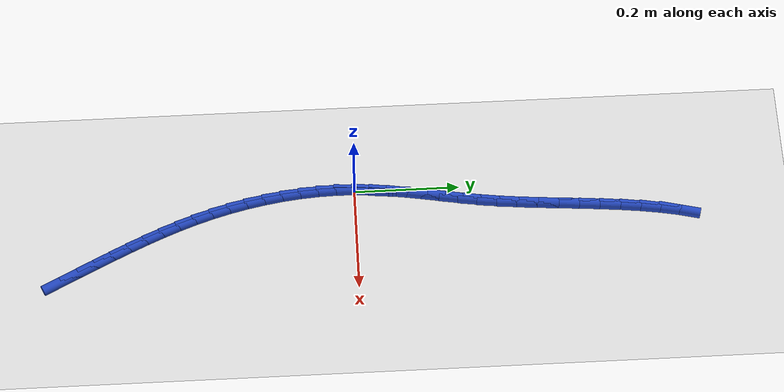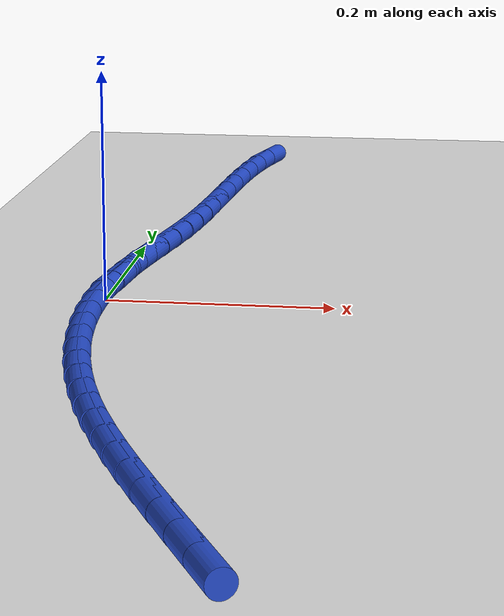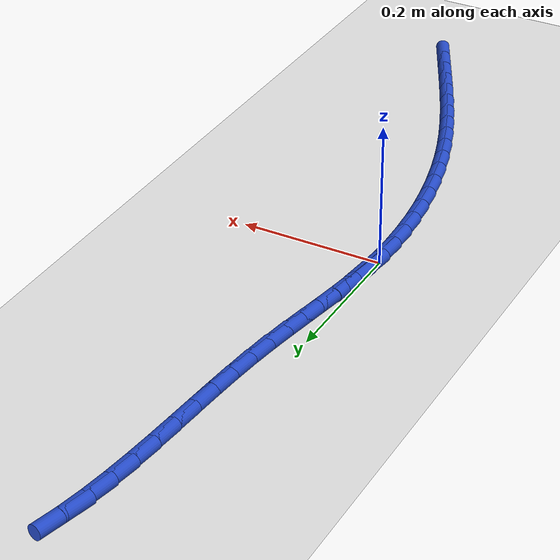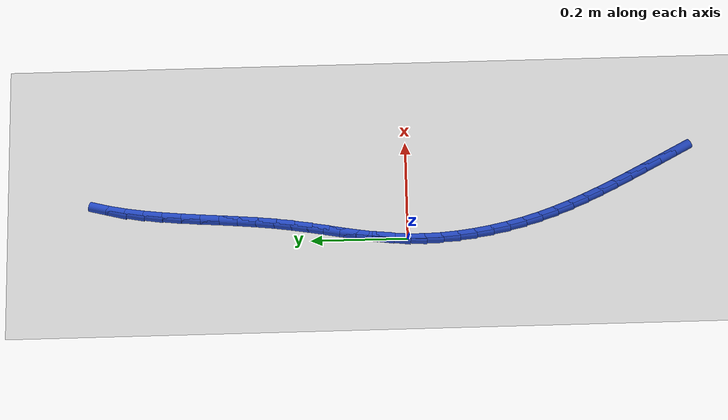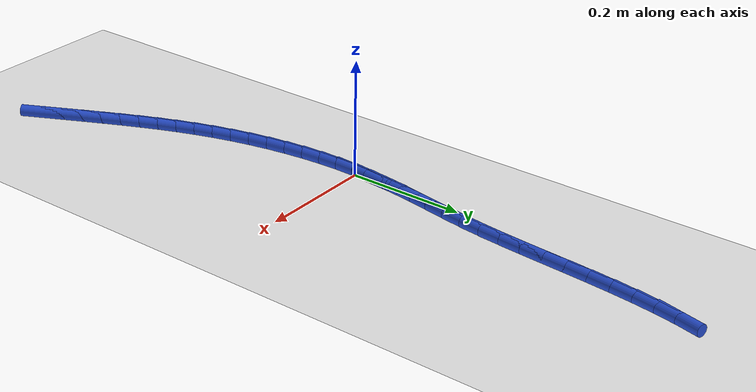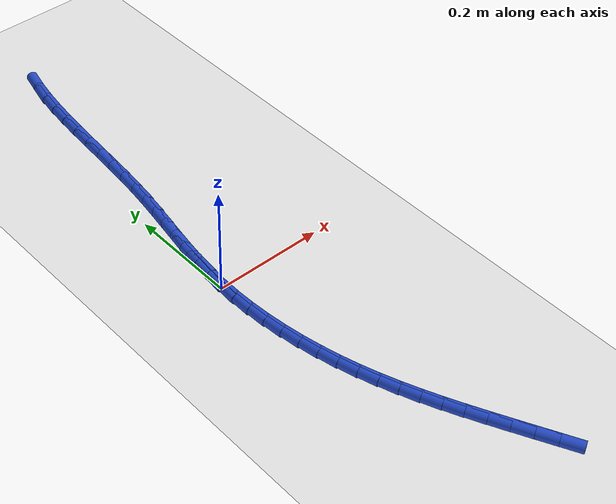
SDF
<sdf version="1.6">
 <world name="default">
  <model name="ground_plane">
   <static>1</static>
   <link name="link">
    <collision name="collision">
     <geometry><plane><normal>0 0 1</normal><size>100 100</size></plane></geometry>
     <surface><friction><ode><mu>100</mu><mu2>50</mu2></ode></friction></surface>
    </collision>
    <visual name="visual">
     <cast_shadows>0</cast_shadows>
     <geometry><plane><normal>0 0 1</normal><size>100 100</size></plane></geometry>
     <material>
      <script><uri>file://media/materials/scripts/gazebo.material</uri><name>Gazebo/WhiteGlow</name></script>
     </material>
    </visual>
   </link>
  </model>
  <model name="line">
   <link name="link_0">
    <pose>-1.734723475976807e-17 -6.245004513516506e-17 0.01 0 1.57 1.5053181064349537</pose>
    <collision name="collision">
     <geometry><cylinder><radius>0.01</radius><length>0.08</length></cylinder></geometry>
    </collision>
    <visual name="visual">
     <material>
      <script><name>Gazebo/Blue</name><uri>file://media/materials/scripts/gazebo.material</uri></script>
     </material>
     <geometry><cylinder><radius>0.01</radius><length>0.08</length></cylinder></geometry>
    </visual>
   </link>
   <link name="link_1">
    <pose>0.0021909447616134535 0.03341283107584024 0.01 0 1.57 1.4635662147080735</pose>
    <collision name="collision">
     <geometry><cylinder><radius>0.01</radius><length>0.08</length></cylinder></geometry>
    </collision>
    <visual name="visual">
     <material>
      <script><name>Gazebo/Blue</name><uri>file://media/materials/scripts/gazebo.material</uri></script>
     </material>
     <geometry><cylinder><radius>0.01</radius><length>0.08</length></cylinder></geometry>
    </visual>
   </link>
   <link name="link_2">
    <pose>0.005755805332917543 0.06653027114891552 0.01 0 1.57 1.4323433520758704</pose>
    <collision name="collision">
     <geometry><cylinder><radius>0.01</radius><length>0.08</length></cylinder></geometry>
    </collision>
    <visual name="visual">
     <material>
      <script><name>Gazebo/Blue</name><uri>file://media/materials/scripts/gazebo.material</uri></script>
     </material>
     <geometry><cylinder><radius>0.01</radius><length>0.08</length></cylinder></geometry>
    </visual>
   </link>
   <link name="link_3">
    <pose>0.01036091575959313 0.09957865667562317 0.01 0 1.57 1.4121766671037692</pose>
    <collision name="collision">
     <geometry><cylinder><radius>0.01</radius><length>0.08</length></cylinder></geometry>
    </collision>
    <visual name="visual">
     <material>
      <script><name>Gazebo/Blue</name><uri>file://media/materials/scripts/gazebo.material</uri></script>
     </material>
     <geometry><cylinder><radius>0.01</radius><length>0.08</length></cylinder></geometry>
    </visual>
   </link>
   <link name="link_4">
    <pose>0.015672610087321067 0.13278432411236057 0.01 0 1.57 1.4031460281855865</pose>
    <collision name="collision">
     <geometry><cylinder><radius>0.01</radius><length>0.08</length></cylinder></geometry>
    </collision>
    <visual name="visual">
     <material>
      <script><name>Gazebo/Blue</name><uri>file://media/materials/scripts/gazebo.material</uri></script>
     </material>
     <geometry><cylinder><radius>0.01</radius><length>0.08</length></cylinder></geometry>
    </visual>
   </link>
   <link name="link_5">
    <pose>0.021357222361782245 0.16637360991552522 0.01 0 1.57 1.404965184819467</pose>
    <collision name="collision">
     <geometry><cylinder><radius>0.01</radius><length>0.08</length></cylinder></geometry>
    </collision>
    <visual name="visual">
     <material>
      <script><name>Gazebo/Blue</name><uri>file://media/materials/scripts/gazebo.material</uri></script>
     </material>
     <geometry><cylinder><radius>0.01</radius><length>0.08</length></cylinder></geometry>
    </visual>
   </link>
   <link name="link_6">
    <pose>0.02708108662865752 0.2005728505415144 0.01 0 1.57 1.4170494922797532</pose>
    <collision name="collision">
     <geometry><cylinder><radius>0.01</radius><length>0.08</length></cylinder></geometry>
    </collision>
    <visual name="visual">
     <material>
      <script><name>Gazebo/Blue</name><uri>file://media/materials/scripts/gazebo.material</uri></script>
     </material>
     <geometry><cylinder><radius>0.01</radius><length>0.08</length></cylinder></geometry>
    </visual>
   </link>
   <link name="link_7">
    <pose>0.03251053693362776 0.23560838244672558 0.01 0 1.57 1.438563299679691</pose>
    <collision name="collision">
     <geometry><cylinder><radius>0.01</radius><length>0.08</length></cylinder></geometry>
    </collision>
    <visual name="visual">
     <material>
      <script><name>Gazebo/Blue</name><uri>file://media/materials/scripts/gazebo.material</uri></script>
     </material>
     <geometry><cylinder><radius>0.01</radius><length>0.08</length></cylinder></geometry>
    </visual>
   </link>
   <link name="link_8">
    <pose>0.03731192184006514 0.2717065293652066 0.01 0 1.57 1.4649946939506238</pose>
    <collision name="collision">
     <geometry><cylinder><radius>0.01</radius><length>0.08</length></cylinder></geometry>
    </collision>
    <visual name="visual">
     <material>
      <script><name>Gazebo/Blue</name><uri>file://media/materials/scripts/gazebo.material</uri></script>
     </material>
     <geometry><cylinder><radius>0.01</radius><length>0.08</length></cylinder></geometry>
    </visual>
   </link>
   <link name="link_9">
    <pose>0.041271228462894084 0.30898877167495264 0.01 0 1.57 1.4843571136594005</pose>
    <collision name="collision">
     <geometry><cylinder><radius>0.01</radius><length>0.08</length></cylinder></geometry>
    </collision>
    <visual name="visual">
     <material>
      <script><name>Gazebo/Blue</name><uri>file://media/materials/scripts/gazebo.material</uri></script>
     </material>
     <geometry><cylinder><radius>0.01</radius><length>0.08</length></cylinder></geometry>
    </visual>
   </link>
   <link name="link_10">
    <pose>0.044583962917615336 0.347217714242423 0.01 0 1.57 1.4950510731282154</pose>
    <collision name="collision">
     <geometry><cylinder><radius>0.01</radius><length>0.08</length></cylinder></geometry>
    </collision>
    <visual name="visual">
     <material>
      <script><name>Gazebo/Blue</name><uri>file://media/materials/scripts/gazebo.material</uri></script>
     </material>
     <geometry><cylinder><radius>0.01</radius><length>0.08</length></cylinder></geometry>
    </visual>
   </link>
   <link name="link_11">
    <pose>0.04753318134204573 0.3860792388540751 0.01 0 1.57 1.4977067613809483</pose>
    <collision name="collision">
     <geometry><cylinder><radius>0.01</radius><length>0.08</length></cylinder></geometry>
    </collision>
    <visual name="visual">
     <material>
      <script><name>Gazebo/Blue</name><uri>file://media/materials/scripts/gazebo.material</uri></script>
     </material>
     <geometry><cylinder><radius>0.01</radius><length>0.08</length></cylinder></geometry>
    </visual>
   </link>
   <link name="link_12">
    <pose>0.05040193987400204 0.4252592272963661 0.01 0 1.57 1.4925740464998956</pose>
    <collision name="collision">
     <geometry><cylinder><radius>0.01</radius><length>0.08</length></cylinder></geometry>
    </collision>
    <visual name="visual">
     <material>
      <script><name>Gazebo/Blue</name><uri>file://media/materials/scripts/gazebo.material</uri></script>
     </material>
     <geometry><cylinder><radius>0.01</radius><length>0.08</length></cylinder></geometry>
    </visual>
   </link>
   <link name="link_13">
    <pose>0.05347329465130108 0.4644435613557532 0.01 0 1.57 1.479550793407288</pose>
    <collision name="collision">
     <geometry><cylinder><radius>0.01</radius><length>0.08</length></cylinder></geometry>
    </collision>
    <visual name="visual">
     <material>
      <script><name>Gazebo/Blue</name><uri>file://media/materials/scripts/gazebo.material</uri></script>
     </material>
     <geometry><cylinder><radius>0.01</radius><length>0.08</length></cylinder></geometry>
    </visual>
   </link>
   <link name="link_14">
    <pose>0.05703030181175968 0.5033181228186937 0.01 0 1.57 1.4581861358759884</pose>
    <collision name="collision">
     <geometry><cylinder><radius>0.01</radius><length>0.08</length></cylinder></geometry>
    </collision>
    <visual name="visual">
     <material>
      <script><name>Gazebo/Blue</name><uri>file://media/materials/scripts/gazebo.material</uri></script>
     </material>
     <geometry><cylinder><radius>0.01</radius><length>0.08</length></cylinder></geometry>
    </visual>
   </link>
   <link name="link_15">
    <pose>0.061356017493194616 0.5415687934716449 0.01 0 1.57 1.4276624286103734</pose>
    <collision name="collision">
     <geometry><cylinder><radius>0.01</radius><length>0.08</length></cylinder></geometry>
    </collision>
    <visual name="visual">
     <material>
      <script><name>Gazebo/Blue</name><uri>file://media/materials/scripts/gazebo.material</uri></script>
     </material>
     <geometry><cylinder><radius>0.01</radius><length>0.08</length></cylinder></geometry>
    </visual>
   </link>
   <link name="link_16">
    <pose>0.06673349783342274 0.5788814551010637 0.01 0 1.57 1.3867626916005327</pose>
    <collision name="collision">
     <geometry><cylinder><radius>0.01</radius><length>0.08</length></cylinder></geometry>
    </collision>
    <visual name="visual">
     <material>
      <script><name>Gazebo/Blue</name><uri>file://media/materials/scripts/gazebo.material</uri></script>
     </material>
     <geometry><cylinder><radius>0.01</radius><length>0.08</length></cylinder></geometry>
    </visual>
   </link>
   <link name="link_17">
    <pose>0.07344579897026081 0.6149419894934077 0.01 0 1.57 1.333838802848029</pose>
    <collision name="collision">
     <geometry><cylinder><radius>0.01</radius><length>0.08</length></cylinder></geometry>
    </collision>
    <visual name="visual">
     <material>
      <script><name>Gazebo/Blue</name><uri>file://media/materials/scripts/gazebo.material</uri></script>
     </material>
     <geometry><cylinder><radius>0.01</radius><length>0.08</length></cylinder></geometry>
    </visual>
   </link>
   <link name="link_213">
    <pose>0.16391883589533504 -0.5559371863479032 0.01 0 1.57 -1.1034819798652173</pose>
    <collision name="collision">
     <geometry><cylinder><radius>0.01</radius><length>0.08</length></cylinder></geometry>
    </collision>
    <visual name="visual">
     <material>
      <script><name>Gazebo/Blue</name><uri>file://media/materials/scripts/gazebo.material</uri></script>
     </material>
     <geometry><cylinder><radius>0.01</radius><length>0.08</length></cylinder></geometry>
    </visual>
   </link>
   <link name="link_214">
    <pose>0.14728656992716113 -0.522975366637749 0.01 0 1.57 -1.105653209513228</pose>
    <collision name="collision">
     <geometry><cylinder><radius>0.01</radius><length>0.08</length></cylinder></geometry>
    </collision>
    <visual name="visual">
     <material>
      <script><name>Gazebo/Blue</name><uri>file://media/materials/scripts/gazebo.material</uri></script>
     </material>
     <geometry><cylinder><radius>0.01</radius><length>0.08</length></cylinder></geometry>
    </visual>
   </link>
   <link name="link_215">
    <pose>0.1311162349291543 -0.4907552505024852 0.01 0 1.57 -1.1108446218431314</pose>
    <collision name="collision">
     <geometry><cylinder><radius>0.01</radius><length>0.08</length></cylinder></geometry>
    </collision>
    <visual name="visual">
     <material>
      <script><name>Gazebo/Blue</name><uri>file://media/materials/scripts/gazebo.material</uri></script>
     </material>
     <geometry><cylinder><radius>0.01</radius><length>0.08</length></cylinder></geometry>
    </visual>
   </link>
   <link name="link_216">
    <pose>0.11546845797663861 -0.45916837849249886 0.01 0 1.57 -1.1212140059491762</pose>
    <collision name="collision">
     <geometry><cylinder><radius>0.01</radius><length>0.08</length></cylinder></geometry>
    </collision>
    <visual name="visual">
     <material>
      <script><name>Gazebo/Blue</name><uri>file://media/materials/scripts/gazebo.material</uri></script>
     </material>
     <geometry><cylinder><radius>0.01</radius><length>0.08</length></cylinder></geometry>
    </visual>
   </link>
   <link name="link_217">
    <pose>0.10043339099669908 -0.4280102027930254 0.01 0 1.57 -1.1369264734748372</pose>
    <collision name="collision">
     <geometry><cylinder><radius>0.01</radius><length>0.08</length></cylinder></geometry>
    </collision>
    <visual name="visual">
     <material>
      <script><name>Gazebo/Blue</name><uri>file://media/materials/scripts/gazebo.material</uri></script>
     </material>
     <geometry><cylinder><radius>0.01</radius><length>0.08</length></cylinder></geometry>
    </visual>
   </link>
   <link name="link_218">
    <pose>0.0861012107824623 -0.39707609466299315 0.01 0 1.57 -1.158007232099378</pose>
    <collision name="collision">
     <geometry><cylinder><radius>0.01</radius><length>0.08</length></cylinder></geometry>
    </collision>
    <visual name="visual">
     <material>
      <script><name>Gazebo/Blue</name><uri>file://media/materials/scripts/gazebo.material</uri></script>
     </material>
     <geometry><cylinder><radius>0.01</radius><length>0.08</length></cylinder></geometry>
    </visual>
   </link>
   <link name="link_219">
    <pose>0.0725620941270546 -0.3661614253613298 0.01 0 1.57 -1.184318797672108</pose>
    <collision name="collision">
     <geometry><cylinder><radius>0.01</radius><length>0.08</length></cylinder></geometry>
    </collision>
    <visual name="visual">
     <material>
      <script><name>Gazebo/Blue</name><uri>file://media/materials/scripts/gazebo.material</uri></script>
     </material>
     <geometry><cylinder><radius>0.01</radius><length>0.08</length></cylinder></geometry>
    </visual>
   </link>
   <link name="link_220">
    <pose>0.059906217823603294 -0.33506156614696525 0.01 0 1.57 -1.2155430083858105</pose>
    <collision name="collision">
     <geometry><cylinder><radius>0.01</radius><length>0.08</length></cylinder></geometry>
    </collision>
    <visual name="visual">
     <material>
      <script><name>Gazebo/Blue</name><uri>file://media/materials/scripts/gazebo.material</uri></script>
     </material>
     <geometry><cylinder><radius>0.01</radius><length>0.08</length></cylinder></geometry>
    </visual>
   </link>
   <link name="link_221">
    <pose>0.048223758665234644 -0.30357188827882714 0.01 0 1.57 -1.25117477601593</pose>
    <collision name="collision">
     <geometry><cylinder><radius>0.01</radius><length>0.08</length></cylinder></geometry>
    </collision>
    <visual name="visual">
     <material>
      <script><name>Gazebo/Blue</name><uri>file://media/materials/scripts/gazebo.material</uri></script>
     </material>
     <geometry><cylinder><radius>0.01</radius><length>0.08</length></cylinder></geometry>
    </visual>
   </link>
   <link name="link_222">
    <pose>0.03760489344507527 -0.2714877630158439 0.01 0 1.57 -1.2900207794302525</pose>
    <collision name="collision">
     <geometry><cylinder><radius>0.01</radius><length>0.08</length></cylinder></geometry>
    </collision>
    <visual name="visual">
     <material>
      <script><name>Gazebo/Blue</name><uri>file://media/materials/scripts/gazebo.material</uri></script>
     </material>
     <geometry><cylinder><radius>0.01</radius><length>0.08</length></cylinder></geometry>
    </visual>
   </link>
   <link name="link_223">
    <pose>0.028136805342616002 -0.2386573923793218 0.01 0 1.57 -1.3293681587737154</pose>
    <collision name="collision">
     <geometry><cylinder><radius>0.01</radius><length>0.08</length></cylinder></geometry>
    </collision>
    <visual name="visual">
     <material>
      <script><name>Gazebo/Blue</name><uri>file://media/materials/scripts/gazebo.material</uri></script>
     </material>
     <geometry><cylinder><radius>0.01</radius><length>0.08</length></cylinder></geometry>
    </visual>
   </link>
   <link name="link_224">
    <pose>0.019892674780619044 -0.20517609655726754 0.01 0 1.57 -1.3689278107238823</pose>
    <collision name="collision">
     <geometry><cylinder><radius>0.01</radius><length>0.08</length></cylinder></geometry>
    </collision>
    <visual name="visual">
     <material>
      <script><name>Gazebo/Blue</name><uri>file://media/materials/scripts/gazebo.material</uri></script>
     </material>
     <geometry><cylinder><radius>0.01</radius><length>0.08</length></cylinder></geometry>
    </visual>
   </link>
   <link name="link_225">
    <pose>0.012941591359367519 -0.1712113898470778 0.01 0 1.57 -1.409182933518053</pose>
    <collision name="collision">
     <geometry><cylinder><radius>0.01</radius><length>0.08</length></cylinder></geometry>
    </collision>
    <visual name="visual">
     <material>
      <script><name>Gazebo/Blue</name><uri>file://media/materials/scripts/gazebo.material</uri></script>
     </material>
     <geometry><cylinder><radius>0.01</radius><length>0.08</length></cylinder></geometry>
    </visual>
   </link>
   <link name="link_226">
    <pose>0.00735264418273883 -0.13693079530663554 0.01 0 1.57 -1.450615946603189</pose>
    <collision name="collision">
     <geometry><cylinder><radius>0.01</radius><length>0.08</length></cylinder></geometry>
    </collision>
    <visual name="visual">
     <material>
      <script><name>Gazebo/Blue</name><uri>file://media/materials/scripts/gazebo.material</uri></script>
     </material>
     <geometry><cylinder><radius>0.01</radius><length>0.08</length></cylinder></geometry>
    </visual>
   </link>
   <link name="link_227">
    <pose>0.0031949223546103474 -0.10250183599382373 0.01 0 1.57 -1.4937211033970368</pose>
    <collision name="collision">
     <geometry><cylinder><radius>0.01</radius><length>0.08</length></cylinder></geometry>
    </collision>
    <visual name="visual">
     <material>
      <script><name>Gazebo/Blue</name><uri>file://media/materials/scripts/gazebo.material</uri></script>
     </material>
     <geometry><cylinder><radius>0.01</radius><length>0.08</length></cylinder></geometry>
    </visual>
   </link>
   <link name="link_228">
    <pose>0.0005375149788594043 -0.06809203496652448 0.01 0 1.57 -1.5390155451566998</pose>
    <collision name="collision">
     <geometry><cylinder><radius>0.01</radius><length>0.08</length></cylinder></geometry>
    </collision>
    <visual name="visual">
     <material>
      <script><name>Gazebo/Blue</name><uri>file://media/materials/scripts/gazebo.material</uri></script>
     </material>
     <geometry><cylinder><radius>0.01</radius><length>0.08</length></cylinder></geometry>
    </visual>
   </link>
   <link name="link_229">
    <pose>-0.0005504888406364754 -0.0338689152826226 0.01 0 1.57 1.554544245253785</pose>
    <collision name="collision">
     <geometry><cylinder><radius>0.01</radius><length>0.08</length></cylinder></geometry>
    </collision>
    <visual name="visual">
     <material>
      <script><name>Gazebo/Blue</name><uri>file://media/materials/scripts/gazebo.material</uri></script>
     </material>
     <geometry><cylinder><radius>0.01</radius><length>0.08</length></cylinder></geometry>
    </visual>
   </link>
   <link name="link_230">
    <pose>-6.938893903907228e-18 -1.1796119636642288e-16 0.01 0 1.57 1.503185562777005</pose>
    <collision name="collision">
     <geometry><cylinder><radius>0.01</radius><length>0.08</length></cylinder></geometry>
    </collision>
    <visual name="visual">
     <material>
      <script><name>Gazebo/Blue</name><uri>file://media/materials/scripts/gazebo.material</uri></script>
     </material>
     <geometry><cylinder><radius>0.01</radius><length>0.08</length></cylinder></geometry>
    </visual>
   </link>
   <link name="link_231">
    <pose>0.002258070604646197 0.03334718782345994 0.01 0 1.57 1.447873702347437</pose>
    <collision name="collision">
     <geometry><cylinder><radius>0.01</radius><length>0.08</length></cylinder></geometry>
    </collision>
    <visual name="visual">
     <material>
      <script><name>Gazebo/Blue</name><uri>file://media/materials/scripts/gazebo.material</uri></script>
     </material>
     <geometry><cylinder><radius>0.01</radius><length>0.08</length></cylinder></geometry>
    </visual>
   </link>
   <link name="link_232">
    <pose>0.006292812077179518 0.06600512512987462 0.01 0 1.57 1.4757453825667937</pose>
    <collision name="collision">
     <geometry><cylinder><radius>0.01</radius><length>0.08</length></cylinder></geometry>
    </collision>
    <visual name="visual">
     <material>
      <script><name>Gazebo/Blue</name><uri>file://media/materials/scripts/gazebo.material</uri></script>
     </material>
     <geometry><cylinder><radius>0.01</radius><length>0.08</length></cylinder></geometry>
    </visual>
   </link>
  </model>
 </world>
</sdf>
